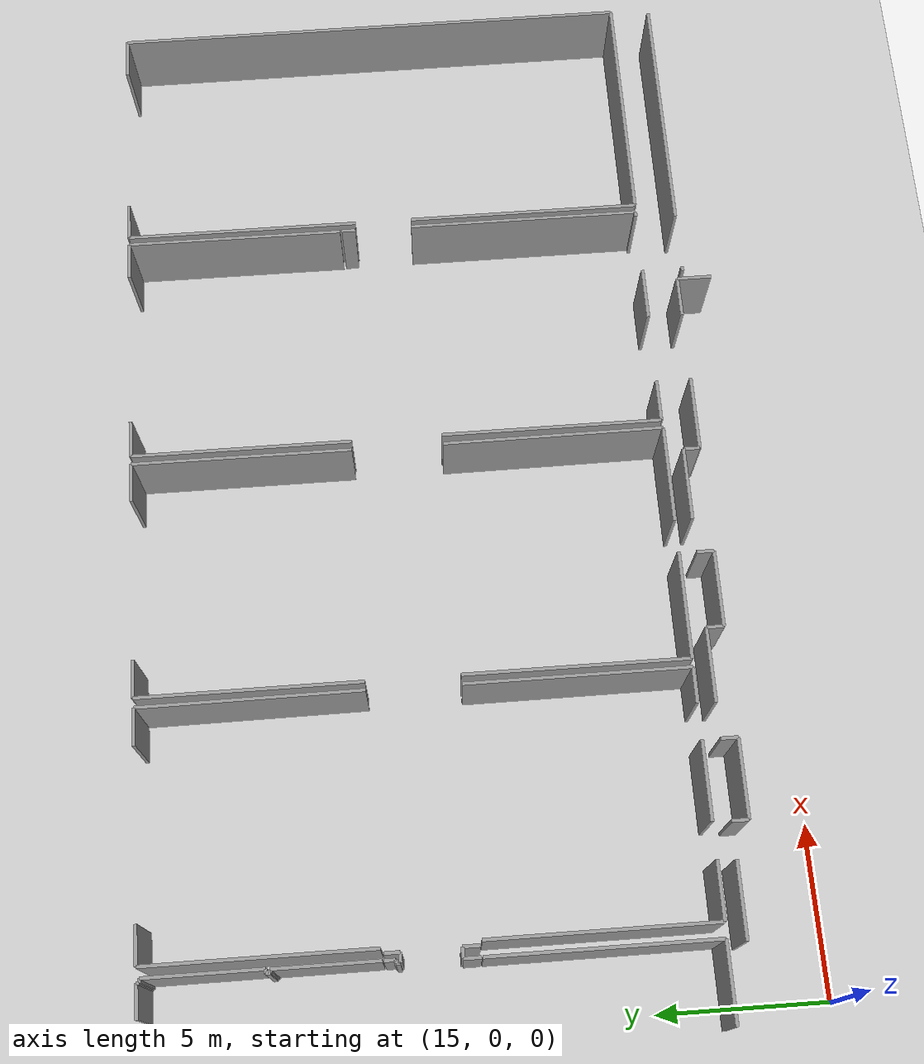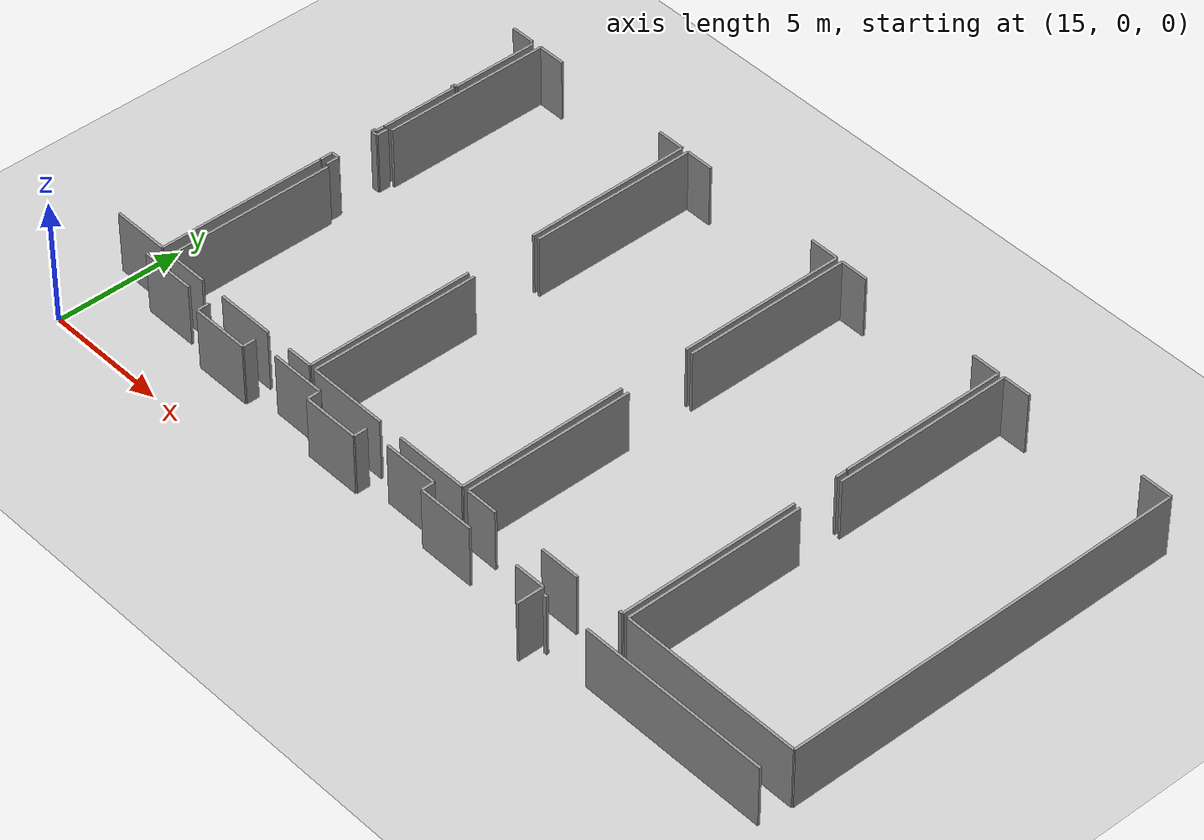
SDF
<sdf version="1.6">
 <world name="default">
  <model name="ground_plane">
   <static>1</static>
   <link name="link">
    <collision name="collision">
     <geometry><plane><normal>0 0 1</normal><size>100 100</size></plane></geometry>
     <surface><friction><ode><mu>100</mu><mu2>50</mu2></ode></friction></surface>
    </collision>
    <visual name="visual">
     <cast_shadows>0</cast_shadows>
     <geometry><plane><normal>0 0 1</normal><size>100 100</size></plane></geometry>
     <material>
      <script><uri>file://media/materials/scripts/gazebo.material</uri><name>Gazebo/Grey</name></script>
     </material>
    </visual>
   </link>
  </model>
  <model name="50045232">
   <static>1</static>
   <link name="Wall_32">
    <collision name="Wall_32_Collision">
     <geometry><box><size>0.328814097476 0.1 2.5</size></box></geometry>
     <pose>0.164407048738 0 1.25 0 0 0</pose>
    </collision>
    <visual name="Wall_32_Visual">
     <pose>0.164407048738 0 1.25 0 0 0</pose>
     <geometry><box><size>0.328814097476 0.1 2.5</size></box></geometry>
     <material>
      <script><uri>file://media/materials/scripts/gazebo.material</uri><name>Gazebo/Grey</name></script>
      <ambient>1 1 1 1</ambient>
     </material>
    </visual>
    <pose>63.6047626607 -6.76069217336 0 0 0 -1.57079632679</pose>
   </link>
   <link name="Wall_33">
    <collision name="Wall_33_Collision">
     <geometry><box><size>0.0933481505001 0.1 2.5</size></box></geometry>
     <pose>0.04667407525 0 1.25 0 0 0</pose>
    </collision>
    <visual name="Wall_33_Visual">
     <pose>0.04667407525 0 1.25 0 0 0</pose>
     <geometry><box><size>0.0933481505001 0.1 2.5</size></box></geometry>
     <material>
      <script><uri>file://media/materials/scripts/gazebo.material</uri><name>Gazebo/Grey</name></script>
      <ambient>1 1 1 1</ambient>
     </material>
    </visual>
    <pose>63.6047626607 -7.08950627084 0 0 0 3.14159265359</pose>
   </link>
   <link name="Wall_34">
    <collision name="Wall_34_Collision">
     <geometry><box><size>0.126242260676 0.1 2.5</size></box></geometry>
     <pose>0.0631211303381 0 1.25 0 0 0</pose>
    </collision>
    <visual name="Wall_34_Visual">
     <pose>0.0631211303381 0 1.25 0 0 0</pose>
     <geometry><box><size>0.126242260676 0.1 2.5</size></box></geometry>
     <material>
      <script><uri>file://media/materials/scripts/gazebo.material</uri><name>Gazebo/Grey</name></script>
      <ambient>1 1 1 1</ambient>
     </material>
    </visual>
    <pose>63.5114145102 -7.08950627084 0 0 0 -1.57079632679</pose>
   </link>
   <link name="Wall_35">
    <collision name="Wall_35_Collision">
     <geometry><box><size>0.285505635815 0.1 2.5</size></box></geometry>
     <pose>0.142752817908 0 1.25 0 0 0</pose>
    </collision>
    <visual name="Wall_35_Visual">
     <pose>0.142752817908 0 1.25 0 0 0</pose>
     <geometry><box><size>0.285505635815 0.1 2.5</size></box></geometry>
     <material>
      <script><uri>file://media/materials/scripts/gazebo.material</uri><name>Gazebo/Grey</name></script>
      <ambient>1 1 1 1</ambient>
     </material>
    </visual>
    <pose>63.5114145102 -7.21574853151 0 0 0 0.0</pose>
   </link>
   <link name="Wall_36">
    <collision name="Wall_36_Collision">
     <geometry><box><size>0.450230195269 0.1 2.5</size></box></geometry>
     <pose>0.225115097635 0 1.25 0 0 0</pose>
    </collision>
    <visual name="Wall_36_Visual">
     <pose>0.225115097635 0 1.25 0 0 0</pose>
     <geometry><box><size>0.450230195269 0.1 2.5</size></box></geometry>
     <material>
      <script><uri>file://media/materials/scripts/gazebo.material</uri><name>Gazebo/Grey</name></script>
      <ambient>1 1 1 1</ambient>
     </material>
    </visual>
    <pose>63.7969201461 -7.21574853151 0 0 0 1.57079632679</pose>
   </link>
   <link name="Wall_37">
    <collision name="Wall_37_Collision">
     <geometry><box><size>0.424321320845 0.1 2.5</size></box></geometry>
     <pose>0.212160660422 0 1.25 0 0 0</pose>
    </collision>
    <visual name="Wall_37_Visual">
     <pose>0.212160660422 0 1.25 0 0 0</pose>
     <geometry><box><size>0.424321320845 0.1 2.5</size></box></geometry>
     <material>
      <script><uri>file://media/materials/scripts/gazebo.material</uri><name>Gazebo/Grey</name></script>
      <ambient>1 1 1 1</ambient>
     </material>
    </visual>
    <pose>86.0085727893 -6.76551833624 0 0 0 -1.57079632679</pose>
   </link>
   <link name="Wall_38">
    <collision name="Wall_38_Collision">
     <geometry><box><size>7.1523733926 0.1 2.5</size></box></geometry>
     <pose>3.5761866963 0 1.25 0 0 0</pose>
    </collision>
    <visual name="Wall_38_Visual">
     <pose>3.5761866963 0 1.25 0 0 0</pose>
     <geometry><box><size>7.1523733926 0.1 2.5</size></box></geometry>
     <material>
      <script><uri>file://media/materials/scripts/gazebo.material</uri><name>Gazebo/Grey</name></script>
      <ambient>1 1 1 1</ambient>
     </material>
    </visual>
    <pose>86.0085727893 -8.96497856803 0 0 0 -1.57079632679</pose>
   </link>
   <link name="Wall_39">
    <collision name="Wall_39_Collision">
     <geometry><box><size>0.144276869344 0.1 2.5</size></box></geometry>
     <pose>0.0721384346722 0 1.25 0 0 0</pose>
    </collision>
    <visual name="Wall_39_Visual">
     <pose>0.0721384346722 0 1.25 0 0 0</pose>
     <geometry><box><size>0.144276869344 0.1 2.5</size></box></geometry>
     <material>
      <script><uri>file://media/materials/scripts/gazebo.material</uri><name>Gazebo/Grey</name></script>
      <ambient>1 1 1 1</ambient>
     </material>
    </visual>
    <pose>86.0085727893 -16.1173519606 0 0 0 3.14159265359</pose>
   </link>
   <link name="Wall_40">
    <collision name="Wall_40_Collision">
     <geometry><box><size>1.61333545007 0.1 2.5</size></box></geometry>
     <pose>0.806667725036 0 1.25 0 0 0</pose>
    </collision>
    <visual name="Wall_40_Visual">
     <pose>0.806667725036 0 1.25 0 0 0</pose>
     <geometry><box><size>1.61333545007 0.1 2.5</size></box></geometry>
     <material>
      <script><uri>file://media/materials/scripts/gazebo.material</uri><name>Gazebo/Grey</name></script>
      <ambient>1 1 1 1</ambient>
     </material>
    </visual>
    <pose>83.9283695825 -16.1173519606 0 0 0 3.14159265359</pose>
   </link>
   <link name="Wall_41">
    <collision name="Wall_41_Collision">
     <geometry><box><size>1.29214160978 0.1 2.5</size></box></geometry>
     <pose>0.64607080489 0 1.25 0 0 0</pose>
    </collision>
    <visual name="Wall_41_Visual">
     <pose>0.64607080489 0 1.25 0 0 0</pose>
     <geometry><box><size>1.29214160978 0.1 2.5</size></box></geometry>
     <material>
      <script><uri>file://media/materials/scripts/gazebo.material</uri><name>Gazebo/Grey</name></script>
      <ambient>1 1 1 1</ambient>
     </material>
    </visual>
    <pose>80.1244642007 -16.1173519606 0 0 0 3.14159265359</pose>
   </link>
   <link name="Wall_42">
    <collision name="Wall_42_Collision">
     <geometry><box><size>6.693125893 0.1 2.5</size></box></geometry>
     <pose>3.3465629465 0 1.25 0 0 0</pose>
    </collision>
    <visual name="Wall_42_Visual">
     <pose>3.3465629465 0 1.25 0 0 0</pose>
     <geometry><box><size>6.693125893 0.1 2.5</size></box></geometry>
     <material>
      <script><uri>file://media/materials/scripts/gazebo.material</uri><name>Gazebo/Grey</name></script>
      <ambient>1 1 1 1</ambient>
     </material>
    </visual>
    <pose>78.8323225909 -16.1173519606 0 0 0 1.57079632679</pose>
   </link>
   <link name="Wall_43">
    <collision name="Wall_43_Collision">
     <geometry><box><size>0.5040800127 0.1 2.5</size></box></geometry>
     <pose>0.25204000635 0 1.25 0 0 0</pose>
    </collision>
    <visual name="Wall_43_Visual">
     <pose>0.25204000635 0 1.25 0 0 0</pose>
     <geometry><box><size>0.5040800127 0.1 2.5</size></box></geometry>
     <material>
      <script><uri>file://media/materials/scripts/gazebo.material</uri><name>Gazebo/Grey</name></script>
      <ambient>1 1 1 1</ambient>
     </material>
    </visual>
    <pose>63.8158437847 -9.42422606763 0 0 0 1.57079632679</pose>
   </link>
   <link name="Wall_44">
    <collision name="Wall_44_Collision">
     <geometry><box><size>0.315097634545 0.1 2.5</size></box></geometry>
     <pose>0.157548817273 0 1.25 0 0 0</pose>
    </collision>
    <visual name="Wall_44_Visual">
     <pose>0.157548817273 0 1.25 0 0 0</pose>
     <geometry><box><size>0.315097634545 0.1 2.5</size></box></geometry>
     <material>
      <script><uri>file://media/materials/scripts/gazebo.material</uri><name>Gazebo/Grey</name></script>
      <ambient>1 1 1 1</ambient>
     </material>
    </visual>
    <pose>63.8158437847 -8.92014605493 0 0 0 3.14159265359</pose>
   </link>
   <link name="Wall_45">
    <collision name="Wall_45_Collision">
     <geometry><box><size>0.5012859184 0.1 2.5</size></box></geometry>
     <pose>0.2506429592 0 1.25 0 0 0</pose>
    </collision>
    <visual name="Wall_45_Visual">
     <pose>0.2506429592 0 1.25 0 0 0</pose>
     <geometry><box><size>0.5012859184 0.1 2.5</size></box></geometry>
     <material>
      <script><uri>file://media/materials/scripts/gazebo.material</uri><name>Gazebo/Grey</name></script>
      <ambient>1 1 1 1</ambient>
     </material>
    </visual>
    <pose>63.5007461502 -8.92014605493 0 0 0 -1.57079632679</pose>
   </link>
   <link name="Wall_50">
    <collision name="Wall_50_Collision">
     <geometry><box><size>3.05038895063 0.1 2.5</size></box></geometry>
     <pose>1.52519447531 0 1.25 0 0 0</pose>
    </collision>
    <visual name="Wall_50_Visual">
     <pose>1.52519447531 0 1.25 0 0 0</pose>
     <geometry><box><size>3.05038895063 0.1 2.5</size></box></geometry>
     <material>
      <script><uri>file://media/materials/scripts/gazebo.material</uri><name>Gazebo/Grey</name></script>
      <ambient>1 1 1 1</ambient>
     </material>
    </visual>
    <pose>63.6106048579 -6.7285600889 0 0 0 1.57079632679</pose>
   </link>
   <link name="Wall_51">
    <collision name="Wall_51_Collision">
     <geometry><box><size>0.0991903476742 0.1 2.5</size></box></geometry>
     <pose>0.0495951738371 0 1.25 0 0 0</pose>
    </collision>
    <visual name="Wall_51_Visual">
     <pose>0.0495951738371 0 1.25 0 0 0</pose>
     <geometry><box><size>0.0991903476742 0.1 2.5</size></box></geometry>
     <material>
      <script><uri>file://media/materials/scripts/gazebo.material</uri><name>Gazebo/Grey</name></script>
      <ambient>1 1 1 1</ambient>
     </material>
    </visual>
    <pose>63.6106048579 -3.67817113828 0 0 0 3.14159265359</pose>
   </link>
   <link name="Wall_52">
    <collision name="Wall_52_Collision">
     <geometry><box><size>0.126369264963 0.1 2.5</size></box></geometry>
     <pose>0.0631846324813 0 1.25 0 0 0</pose>
    </collision>
    <visual name="Wall_52_Visual">
     <pose>0.0631846324813 0 1.25 0 0 0</pose>
     <geometry><box><size>0.126369264963 0.1 2.5</size></box></geometry>
     <material>
      <script><uri>file://media/materials/scripts/gazebo.material</uri><name>Gazebo/Grey</name></script>
      <ambient>1 1 1 1</ambient>
     </material>
    </visual>
    <pose>63.5114145102 -3.67817113828 0 0 0 1.57079632679</pose>
   </link>
   <link name="Wall_53">
    <collision name="Wall_53_Collision">
     <geometry><box><size>0.113668836323 0.1 2.5</size></box></geometry>
     <pose>0.0568344181616 0 1.25 0 0 0</pose>
    </collision>
    <visual name="Wall_53_Visual">
     <pose>0.0568344181616 0 1.25 0 0 0</pose>
     <geometry><box><size>0.113668836323 0.1 2.5</size></box></geometry>
     <material>
      <script><uri>file://media/materials/scripts/gazebo.material</uri><name>Gazebo/Grey</name></script>
      <ambient>1 1 1 1</ambient>
     </material>
    </visual>
    <pose>63.5114145102 -3.55180187331 0 0 0 0.0</pose>
   </link>
   <link name="Wall_54">
    <collision name="Wall_54_Collision">
     <geometry><box><size>3.41908239403 0.1 2.5</size></box></geometry>
     <pose>1.70954119702 0 1.25 0 0 0</pose>
    </collision>
    <visual name="Wall_54_Visual">
     <pose>1.70954119702 0 1.25 0 0 0</pose>
     <geometry><box><size>3.41908239403 0.1 2.5</size></box></geometry>
     <material>
      <script><uri>file://media/materials/scripts/gazebo.material</uri><name>Gazebo/Grey</name></script>
      <ambient>1 1 1 1</ambient>
     </material>
    </visual>
    <pose>63.6250833466 -3.55180187331 0 0 0 1.57079632679</pose>
   </link>
   <link name="Wall_55">
    <collision name="Wall_55_Collision">
     <geometry><box><size>0.119130020638 0.1 2.5</size></box></geometry>
     <pose>0.0595650103191 0 1.25 0 0 0</pose>
    </collision>
    <visual name="Wall_55_Visual">
     <pose>0.0595650103191 0 1.25 0 0 0</pose>
     <geometry><box><size>0.119130020638 0.1 2.5</size></box></geometry>
     <material>
      <script><uri>file://media/materials/scripts/gazebo.material</uri><name>Gazebo/Grey</name></script>
      <ambient>1 1 1 1</ambient>
     </material>
    </visual>
    <pose>63.6250833466 -0.132719479282 0 0 0 3.14159265359</pose>
   </link>
   <link name="Wall_56">
    <collision name="Wall_56_Collision">
     <geometry><box><size>0.0822987775837 0.1 2.5</size></box></geometry>
     <pose>0.0411493887919 0 1.25 0 0 0</pose>
    </collision>
    <visual name="Wall_56_Visual">
     <pose>0.0411493887919 0 1.25 0 0 0</pose>
     <geometry><box><size>0.0822987775837 0.1 2.5</size></box></geometry>
     <material>
      <script><uri>file://media/materials/scripts/gazebo.material</uri><name>Gazebo/Grey</name></script>
      <ambient>1 1 1 1</ambient>
     </material>
    </visual>
    <pose>63.5059533259 -0.132719479282 0 0 0 1.57079632679</pose>
   </link>
   <link name="Wall_57">
    <collision name="Wall_57_Collision">
     <geometry><box><size>0.955453246547 0.1 2.5</size></box></geometry>
     <pose>0.477726623274 0 1.25 0 0 0</pose>
    </collision>
    <visual name="Wall_57_Visual">
     <pose>0.477726623274 0 1.25 0 0 0</pose>
     <geometry><box><size>0.955453246547 0.1 2.5</size></box></geometry>
     <material>
      <script><uri>file://media/materials/scripts/gazebo.material</uri><name>Gazebo/Grey</name></script>
      <ambient>1 1 1 1</ambient>
     </material>
    </visual>
    <pose>63.5059533259 -0.0504207016987 0 0 0 3.14159265359</pose>
   </link>
   <link name="Wall_60">
    <collision name="Wall_60_Collision">
     <geometry><box><size>6.64778536276 0.1 2.5</size></box></geometry>
     <pose>3.32389268138 0 1.25 0 0 0</pose>
    </collision>
    <visual name="Wall_60_Visual">
     <pose>3.32389268138 0 1.25 0 0 0</pose>
     <geometry><box><size>6.64778536276 0.1 2.5</size></box></geometry>
     <material>
      <script><uri>file://media/materials/scripts/gazebo.material</uri><name>Gazebo/Grey</name></script>
      <ambient>1 1 1 1</ambient>
     </material>
    </visual>
    <pose>63.9342117796 -6.68880774726 0 0 0 1.57079632679</pose>
   </link>
   <link name="Wall_61">
    <collision name="Wall_61_Collision">
     <geometry><box><size>1.13059215749 0.1 2.5</size></box></geometry>
     <pose>0.565296078743 0 1.25 0 0 0</pose>
    </collision>
    <visual name="Wall_61_Visual">
     <pose>0.565296078743 0 1.25 0 0 0</pose>
     <geometry><box><size>1.13059215749 0.1 2.5</size></box></geometry>
     <material>
      <script><uri>file://media/materials/scripts/gazebo.material</uri><name>Gazebo/Grey</name></script>
      <ambient>1 1 1 1</ambient>
     </material>
    </visual>
    <pose>63.9342117796 -0.0410223845055 0 0 0 0.0</pose>
   </link>
   <link name="Wall_62">
    <collision name="Wall_62_Collision">
     <geometry><box><size>1.11128750595 0.1 2.5</size></box></geometry>
     <pose>0.555643752977 0 1.25 0 0 0</pose>
    </collision>
    <visual name="Wall_62_Visual">
     <pose>0.555643752977 0 1.25 0 0 0</pose>
     <geometry><box><size>1.11128750595 0.1 2.5</size></box></geometry>
     <material>
      <script><uri>file://media/materials/scripts/gazebo.material</uri><name>Gazebo/Grey</name></script>
      <ambient>1 1 1 1</ambient>
     </material>
    </visual>
    <pose>69.9836799492 -0.0410223845055 0 0 0 0.0</pose>
   </link>
   <link name="Wall_63">
    <collision name="Wall_63_Collision">
     <geometry><box><size>6.64787644378 0.1 2.5</size></box></geometry>
     <pose>3.32393822189 0 1.25 0 0 0</pose>
    </collision>
    <visual name="Wall_63_Visual">
     <pose>3.32393822189 0 1.25 0 0 0</pose>
     <geometry><box><size>6.64787644378 0.1 2.5</size></box></geometry>
     <material>
      <script><uri>file://media/materials/scripts/gazebo.material</uri><name>Gazebo/Grey</name></script>
      <ambient>1 1 1 1</ambient>
     </material>
    </visual>
    <pose>71.0949674552 -0.0410223845055 0 0 0 -1.56556167274</pose>
   </link>
   <link name="Wall_64">
    <collision name="Wall_64_Collision">
     <geometry><box><size>6.65515161137 0.1 2.5</size></box></geometry>
     <pose>3.32757580568 0 1.25 0 0 0</pose>
    </collision>
    <visual name="Wall_64_Visual">
     <pose>3.32757580568 0 1.25 0 0 0</pose>
     <geometry><box><size>6.65515161137 0.1 2.5</size></box></geometry>
     <material>
      <script><uri>file://media/materials/scripts/gazebo.material</uri><name>Gazebo/Grey</name></script>
      <ambient>1 1 1 1</ambient>
     </material>
    </visual>
    <pose>71.3766629624 -6.68512462296 0 0 0 1.57079632679</pose>
   </link>
   <link name="Wall_65">
    <collision name="Wall_65_Collision">
     <geometry><box><size>1.12551198603 0.1 2.5</size></box></geometry>
     <pose>0.562755993015 0 1.25 0 0 0</pose>
    </collision>
    <visual name="Wall_65_Visual">
     <pose>0.562755993015 0 1.25 0 0 0</pose>
     <geometry><box><size>1.12551198603 0.1 2.5</size></box></geometry>
     <material>
      <script><uri>file://media/materials/scripts/gazebo.material</uri><name>Gazebo/Grey</name></script>
      <ambient>1 1 1 1</ambient>
     </material>
    </visual>
    <pose>71.3766629624 -0.0299730115891 0 0 0 0.0</pose>
   </link>
   <link name="Wall_66">
    <collision name="Wall_66_Collision">
     <geometry><box><size>1.17745673916 0.1 2.5</size></box></geometry>
     <pose>0.588728369582 0 1.25 0 0 0</pose>
    </collision>
    <visual name="Wall_66_Visual">
     <pose>0.588728369582 0 1.25 0 0 0</pose>
     <geometry><box><size>1.17745673916 0.1 2.5</size></box></geometry>
     <material>
      <script><uri>file://media/materials/scripts/gazebo.material</uri><name>Gazebo/Grey</name></script>
      <ambient>1 1 1 1</ambient>
     </material>
    </visual>
    <pose>77.3851087474 -0.0299730115891 0 0 0 0.0</pose>
   </link>
   <link name="Wall_67">
    <collision name="Wall_67_Collision">
     <geometry><box><size>6.65515689018 0.1 2.5</size></box></geometry>
     <pose>3.32757844509 0 1.25 0 0 0</pose>
    </collision>
    <visual name="Wall_67_Visual">
     <pose>3.32757844509 0 1.25 0 0 0</pose>
     <geometry><box><size>6.65515689018 0.1 2.5</size></box></geometry>
     <material>
      <script><uri>file://media/materials/scripts/gazebo.material</uri><name>Gazebo/Grey</name></script>
      <ambient>1 1 1 1</ambient>
     </material>
    </visual>
    <pose>78.5625654866 -0.0299730115891 0 0 0 -1.57205584408</pose>
   </link>
   <link name="Wall_68">
    <collision name="Wall_68_Collision">
     <geometry><box><size>6.67369423718 0.1 2.5</size></box></geometry>
     <pose>3.33684711859 0 1.25 0 0 0</pose>
    </collision>
    <visual name="Wall_68_Visual">
     <pose>3.33684711859 0 1.25 0 0 0</pose>
     <geometry><box><size>6.67369423718 0.1 2.5</size></box></geometry>
     <material>
      <script><uri>file://media/materials/scripts/gazebo.material</uri><name>Gazebo/Grey</name></script>
      <ambient>1 1 1 1</ambient>
     </material>
    </visual>
    <pose>78.8174630894 -6.70328623591 0 0 0 1.57079632679</pose>
   </link>
   <link name="Wall_69">
    <collision name="Wall_69_Collision">
     <geometry><box><size>1.1313541832 0.1 2.5</size></box></geometry>
     <pose>0.565677091602 0 1.25 0 0 0</pose>
    </collision>
    <visual name="Wall_69_Visual">
     <pose>0.565677091602 0 1.25 0 0 0</pose>
     <geometry><box><size>1.1313541832 0.1 2.5</size></box></geometry>
     <material>
      <script><uri>file://media/materials/scripts/gazebo.material</uri><name>Gazebo/Grey</name></script>
      <ambient>1 1 1 1</ambient>
     </material>
    </visual>
    <pose>78.8174630894 -0.02959199873 0 0 0 0.0</pose>
   </link>
   <link name="Wall_70">
    <collision name="Wall_70_Collision">
     <geometry><box><size>1.14291157327 0.1 2.5</size></box></geometry>
     <pose>0.571455786633 0 1.25 0 0 0</pose>
    </collision>
    <visual name="Wall_70_Visual">
     <pose>0.571455786633 0 1.25 0 0 0</pose>
     <geometry><box><size>1.14291157327 0.1 2.5</size></box></geometry>
     <material>
      <script><uri>file://media/materials/scripts/gazebo.material</uri><name>Gazebo/Grey</name></script>
      <ambient>1 1 1 1</ambient>
     </material>
    </visual>
    <pose>84.8665502461 -0.02959199873 0 0 0 0.0</pose>
   </link>
   <link name="Wall_71">
    <collision name="Wall_71_Collision">
     <geometry><box><size>6.67371222421 0.1 2.5</size></box></geometry>
     <pose>3.33685611211 0 1.25 0 0 0</pose>
    </collision>
    <visual name="Wall_71_Visual">
     <pose>3.33685611211 0 1.25 0 0 0</pose>
     <geometry><box><size>6.67371222421 0.1 2.5</size></box></geometry>
     <material>
      <script><uri>file://media/materials/scripts/gazebo.material</uri><name>Gazebo/Grey</name></script>
      <ambient>1 1 1 1</ambient>
     </material>
    </visual>
    <pose>86.0094618193 -0.02959199873 0 0 0 -1.57311805364</pose>
   </link>
   <link name="Wall_72">
    <collision name="Wall_72_Collision">
     <geometry><box><size>7.32205111923 0.1 2.5</size></box></geometry>
     <pose>3.66102555961 0 1.25 0 0 0</pose>
    </collision>
    <visual name="Wall_72_Visual">
     <pose>3.66102555961 0 1.25 0 0 0</pose>
     <geometry><box><size>7.32205111923 0.1 2.5</size></box></geometry>
     <material>
      <script><uri>file://media/materials/scripts/gazebo.material</uri><name>Gazebo/Grey</name></script>
      <ambient>1 1 1 1</ambient>
     </material>
    </visual>
    <pose>93.5758691856 -16.1311954278 0 0 0 3.14159265359</pose>
   </link>
   <link name="Wall_73">
    <collision name="Wall_73_Collision">
     <geometry><box><size>7.1579615812 0.1 2.5</size></box></geometry>
     <pose>3.5789807906 0 1.25 0 0 0</pose>
    </collision>
    <visual name="Wall_73_Visual">
     <pose>3.5789807906 0 1.25 0 0 0</pose>
     <geometry><box><size>7.1579615812 0.1 2.5</size></box></geometry>
     <material>
      <script><uri>file://media/materials/scripts/gazebo.material</uri><name>Gazebo/Grey</name></script>
      <ambient>1 1 1 1</ambient>
     </material>
    </visual>
    <pose>86.2538180664 -16.1311954278 0 0 0 1.57079632679</pose>
   </link>
   <link name="Wall_74">
    <collision name="Wall_74_Collision">
     <geometry><box><size>7.17777424988 0.1 2.5</size></box></geometry>
     <pose>3.58888712494 0 1.25 0 0 0</pose>
    </collision>
    <visual name="Wall_74_Visual">
     <pose>3.58888712494 0 1.25 0 0 0</pose>
     <geometry><box><size>7.17777424988 0.1 2.5</size></box></geometry>
     <material>
      <script><uri>file://media/materials/scripts/gazebo.material</uri><name>Gazebo/Grey</name></script>
      <ambient>1 1 1 1</ambient>
     </material>
    </visual>
    <pose>86.2538180664 -7.21168439435 0 0 0 1.57079632679</pose>
   </link>
   <link name="Wall_75">
    <collision name="Wall_75_Collision">
     <geometry><box><size>1.13681536752 0.1 2.5</size></box></geometry>
     <pose>0.568407683759 0 1.25 0 0 0</pose>
    </collision>
    <visual name="Wall_75_Visual">
     <pose>0.568407683759 0 1.25 0 0 0</pose>
     <geometry><box><size>1.13681536752 0.1 2.5</size></box></geometry>
     <material>
      <script><uri>file://media/materials/scripts/gazebo.material</uri><name>Gazebo/Grey</name></script>
      <ambient>1 1 1 1</ambient>
     </material>
    </visual>
    <pose>86.2538180664 -0.0339101444674 0 0 0 0.0</pose>
   </link>
   <link name="Wall_76">
    <collision name="Wall_76_Collision">
     <geometry><box><size>1.25188125099 0.1 2.5</size></box></geometry>
     <pose>0.625940625496 0 1.25 0 0 0</pose>
    </collision>
    <visual name="Wall_76_Visual">
     <pose>0.625940625496 0 1.25 0 0 0</pose>
     <geometry><box><size>1.25188125099 0.1 2.5</size></box></geometry>
     <material>
      <script><uri>file://media/materials/scripts/gazebo.material</uri><name>Gazebo/Grey</name></script>
      <ambient>1 1 1 1</ambient>
     </material>
    </visual>
    <pose>92.2994761073 -0.0339101444674 0 0 0 0.0</pose>
   </link>
   <link name="Wall_77">
    <collision name="Wall_77_Collision">
     <geometry><box><size>16.0973039458 0.1 2.5</size></box></geometry>
     <pose>8.04865197291 0 1.25 0 0 0</pose>
    </collision>
    <visual name="Wall_77_Visual">
     <pose>8.04865197291 0 1.25 0 0 0</pose>
     <geometry><box><size>16.0973039458 0.1 2.5</size></box></geometry>
     <material>
      <script><uri>file://media/materials/scripts/gazebo.material</uri><name>Gazebo/Grey</name></script>
      <ambient>1 1 1 1</ambient>
     </material>
    </visual>
    <pose>93.5513573583 -0.0339101444674 0 0 0 -1.56927359747</pose>
   </link>
   <link name="Wall_78">
    <collision name="Wall_78_Collision">
     <geometry><box><size>2.97710747738 0.1 2.5</size></box></geometry>
     <pose>1.48855373869 0 1.25 0 0 0</pose>
    </collision>
    <visual name="Wall_78_Visual">
     <pose>1.48855373869 0 1.25 0 0 0</pose>
     <geometry><box><size>2.97710747738 0.1 2.5</size></box></geometry>
     <material>
      <script><uri>file://media/materials/scripts/gazebo.material</uri><name>Gazebo/Grey</name></script>
      <ambient>1 1 1 1</ambient>
     </material>
    </visual>
    <pose>78.5793300524 -16.1432608351 0 0 0 3.14159265359</pose>
   </link>
   <link name="Wall_79">
    <collision name="Wall_79_Collision">
     <geometry><box><size>3.2364502302 0.1 2.5</size></box></geometry>
     <pose>1.6182251151 0 1.25 0 0 0</pose>
    </collision>
    <visual name="Wall_79_Visual">
     <pose>1.6182251151 0 1.25 0 0 0</pose>
     <geometry><box><size>3.2364502302 0.1 2.5</size></box></geometry>
     <material>
      <script><uri>file://media/materials/scripts/gazebo.material</uri><name>Gazebo/Grey</name></script>
      <ambient>1 1 1 1</ambient>
     </material>
    </visual>
    <pose>74.6131131926 -16.1432608351 0 0 0 3.14159265359</pose>
   </link>
   <link name="Wall_80">
    <collision name="Wall_80_Collision">
     <geometry><box><size>6.69274488014 0.1 2.5</size></box></geometry>
     <pose>3.34637244007 0 1.25 0 0 0</pose>
    </collision>
    <visual name="Wall_80_Visual">
     <pose>3.34637244007 0 1.25 0 0 0</pose>
     <geometry><box><size>6.69274488014 0.1 2.5</size></box></geometry>
     <material>
      <script><uri>file://media/materials/scripts/gazebo.material</uri><name>Gazebo/Grey</name></script>
      <ambient>1 1 1 1</ambient>
     </material>
    </visual>
    <pose>71.3766629624 -16.1432608351 0 0 0 1.57079632679</pose>
   </link>
   <link name="Wall_81">
    <collision name="Wall_81_Collision">
     <geometry><box><size>6.69282823123 0.1 2.5</size></box></geometry>
     <pose>3.34641411561 0 1.25 0 0 0</pose>
    </collision>
    <visual name="Wall_81_Visual">
     <pose>3.34641411561 0 1.25 0 0 0</pose>
     <geometry><box><size>6.69282823123 0.1 2.5</size></box></geometry>
     <material>
      <script><uri>file://media/materials/scripts/gazebo.material</uri><name>Gazebo/Grey</name></script>
      <ambient>1 1 1 1</ambient>
     </material>
    </visual>
    <pose>78.5459279251 -9.45051595491 0 0 0 -1.56580557179</pose>
   </link>
   <link name="Wall_82">
    <collision name="Wall_82_Collision">
     <geometry><box><size>1.06734402286 0.1 2.5</size></box></geometry>
     <pose>0.53367201143 0 1.25 0 0 0</pose>
    </collision>
    <visual name="Wall_82_Visual">
     <pose>0.53367201143 0 1.25 0 0 0</pose>
     <geometry><box><size>1.06734402286 0.1 2.5</size></box></geometry>
     <material>
      <script><uri>file://media/materials/scripts/gazebo.material</uri><name>Gazebo/Grey</name></script>
      <ambient>1 1 1 1</ambient>
     </material>
    </visual>
    <pose>71.122400381 -16.1360215907 0 0 0 3.14159265359</pose>
   </link>
   <link name="Wall_83">
    <collision name="Wall_83_Collision">
     <geometry><box><size>2.3309096682 0.1 2.5</size></box></geometry>
     <pose>1.1654548341 0 1.25 0 0 0</pose>
    </collision>
    <visual name="Wall_83_Visual">
     <pose>1.1654548341 0 1.25 0 0 0</pose>
     <geometry><box><size>2.3309096682 0.1 2.5</size></box></geometry>
     <material>
      <script><uri>file://media/materials/scripts/gazebo.material</uri><name>Gazebo/Grey</name></script>
      <ambient>1 1 1 1</ambient>
     </material>
    </visual>
    <pose>69.009303064 -16.1360215907 0 0 0 3.14159265359</pose>
   </link>
   <link name="Wall_84">
    <collision name="Wall_84_Collision">
     <geometry><box><size>1.69195110335 0.1 2.5</size></box></geometry>
     <pose>0.845975551675 0 1.25 0 0 0</pose>
    </collision>
    <visual name="Wall_84_Visual">
     <pose>0.845975551675 0 1.25 0 0 0</pose>
     <geometry><box><size>1.69195110335 0.1 2.5</size></box></geometry>
     <material>
      <script><uri>file://media/materials/scripts/gazebo.material</uri><name>Gazebo/Grey</name></script>
      <ambient>1 1 1 1</ambient>
     </material>
    </visual>
    <pose>65.6472455945 -16.1360215907 0 0 0 3.14159265359</pose>
   </link>
   <link name="Wall_85">
    <collision name="Wall_85_Collision">
     <geometry><box><size>6.66353389427 0.1 2.5</size></box></geometry>
     <pose>3.33176694713 0 1.25 0 0 0</pose>
    </collision>
    <visual name="Wall_85_Visual">
     <pose>3.33176694713 0 1.25 0 0 0</pose>
     <geometry><box><size>6.66353389427 0.1 2.5</size></box></geometry>
     <material>
      <script><uri>file://media/materials/scripts/gazebo.material</uri><name>Gazebo/Grey</name></script>
      <ambient>1 1 1 1</ambient>
     </material>
    </visual>
    <pose>63.9552944912 -16.1360215907 0 0 0 1.57079632679</pose>
   </link>
   <link name="Wall_86">
    <collision name="Wall_86_Collision">
     <geometry><box><size>6.66355018039 0.1 2.5</size></box></geometry>
     <pose>3.33177509019 0 1.25 0 0 0</pose>
    </collision>
    <visual name="Wall_86_Visual">
     <pose>3.33177509019 0 1.25 0 0 0</pose>
     <geometry><box><size>6.66355018039 0.1 2.5</size></box></geometry>
     <material>
      <script><uri>file://media/materials/scripts/gazebo.material</uri><name>Gazebo/Grey</name></script>
      <ambient>1 1 1 1</ambient>
     </material>
    </visual>
    <pose>71.1076678838 -9.47248769646 0 0 0 -1.56858541687</pose>
   </link>
   <link name="Wall_88">
    <collision name="Wall_88_Collision">
     <geometry><box><size>6.65375456422 0.1 2.5</size></box></geometry>
     <pose>3.32687728211 0 1.25 0 0 0</pose>
    </collision>
    <visual name="Wall_88_Visual">
     <pose>3.32687728211 0 1.25 0 0 0</pose>
     <geometry><box><size>6.65375456422 0.1 2.5</size></box></geometry>
     <material>
      <script><uri>file://media/materials/scripts/gazebo.material</uri><name>Gazebo/Grey</name></script>
      <ambient>1 1 1 1</ambient>
     </material>
    </visual>
    <pose>63.502016193 -9.46156532783 0 0 0 -1.57079632679</pose>
   </link>
   <link name="Wall_89">
    <collision name="Wall_89_Collision">
     <geometry><box><size>2.30271471662 0.1 2.5</size></box></geometry>
     <pose>1.15135735831 0 1.25 0 0 0</pose>
    </collision>
    <visual name="Wall_89_Visual">
     <pose>1.15135735831 0 1.25 0 0 0</pose>
     <geometry><box><size>2.30271471662 0.1 2.5</size></box></geometry>
     <material>
      <script><uri>file://media/materials/scripts/gazebo.material</uri><name>Gazebo/Grey</name></script>
      <ambient>1 1 1 1</ambient>
     </material>
    </visual>
    <pose>63.502016193 -16.115319892 0 0 0 3.14159265359</pose>
   </link>
   <link name="Wall_333">
    <collision name="Wall_333_Collision">
     <geometry><box><size>0.142498809335 0.1 2.5</size></box></geometry>
     <pose>0.0712494046674 0 1.25 0 0 0</pose>
    </collision>
    <visual name="Wall_333_Visual">
     <pose>0.0712494046674 0 1.25 0 0 0</pose>
     <geometry><box><size>0.142498809335 0.1 2.5</size></box></geometry>
     <material>
      <script><uri>file://media/materials/scripts/gazebo.material</uri><name>Gazebo/Grey</name></script>
      <ambient>1 1 1 1</ambient>
     </material>
    </visual>
    <pose>83.8242260676 -17.3724083188 0 0 0 0.0</pose>
   </link>
   <link name="Wall_334">
    <collision name="Wall_334_Collision">
     <geometry><box><size>7.67207493253 0.1 2.5</size></box></geometry>
     <pose>3.83603746626 0 1.25 0 0 0</pose>
    </collision>
    <visual name="Wall_334_Visual">
     <pose>3.83603746626 0 1.25 0 0 0</pose>
     <geometry><box><size>7.67207493253 0.1 2.5</size></box></geometry>
     <material>
      <script><uri>file://media/materials/scripts/gazebo.material</uri><name>Gazebo/Grey</name></script>
      <ambient>1 1 1 1</ambient>
     </material>
    </visual>
    <pose>85.7713287823 -17.3724083188 0 0 0 0.0</pose>
   </link>
   <link name="Wall_370">
    <collision name="Wall_370_Collision">
     <geometry><box><size>2.21724083188 0.1 2.5</size></box></geometry>
     <pose>1.10862041594 0 1.25 0 0 0</pose>
    </collision>
    <visual name="Wall_370_Visual">
     <pose>1.10862041594 0 1.25 0 0 0</pose>
     <geometry><box><size>2.21724083188 0.1 2.5</size></box></geometry>
     <material>
      <script><uri>file://media/materials/scripts/gazebo.material</uri><name>Gazebo/Grey</name></script>
      <ambient>1 1 1 1</ambient>
     </material>
    </visual>
    <pose>63.3889823782 -16.6806159708 0 0 0 0.0</pose>
   </link>
   <link name="Wall_371">
    <collision name="Wall_371_Collision">
     <geometry><box><size>0.489855532624 0.1 2.5</size></box></geometry>
     <pose>0.244927766312 0 1.25 0 0 0</pose>
    </collision>
    <visual name="Wall_371_Visual">
     <pose>0.244927766312 0 1.25 0 0 0</pose>
     <geometry><box><size>0.489855532624 0.1 2.5</size></box></geometry>
     <material>
      <script><uri>file://media/materials/scripts/gazebo.material</uri><name>Gazebo/Grey</name></script>
      <ambient>1 1 1 1</ambient>
     </material>
    </visual>
    <pose>66.6615018257 -16.6806159708 0 0 0 -1.57079632679</pose>
   </link>
   <link name="Wall_372">
    <collision name="Wall_372_Collision">
     <geometry><box><size>2.32989363391 0.1 2.5</size></box></geometry>
     <pose>1.16494681696 0 1.25 0 0 0</pose>
    </collision>
    <visual name="Wall_372_Visual">
     <pose>1.16494681696 0 1.25 0 0 0</pose>
     <geometry><box><size>2.32989363391 0.1 2.5</size></box></geometry>
     <material>
      <script><uri>file://media/materials/scripts/gazebo.material</uri><name>Gazebo/Grey</name></script>
      <ambient>1 1 1 1</ambient>
     </material>
    </visual>
    <pose>66.6615018257 -17.1704715034 0 0 0 0.0</pose>
   </link>
   <link name="Wall_373">
    <collision name="Wall_373_Collision">
     <geometry><box><size>0.5012859184 0.1 2.5</size></box></geometry>
     <pose>0.2506429592 0 1.25 0 0 0</pose>
    </collision>
    <visual name="Wall_373_Visual">
     <pose>0.2506429592 0 1.25 0 0 0</pose>
     <geometry><box><size>0.5012859184 0.1 2.5</size></box></geometry>
     <material>
      <script><uri>file://media/materials/scripts/gazebo.material</uri><name>Gazebo/Grey</name></script>
      <ambient>1 1 1 1</ambient>
     </material>
    </visual>
    <pose>68.9913954596 -17.1704715034 0 0 0 1.57079632679</pose>
   </link>
   <link name="Wall_374">
    <collision name="Wall_374_Collision">
     <geometry><box><size>2.22130496904 0.1 2.5</size></box></geometry>
     <pose>1.11065248452 0 1.25 0 0 0</pose>
    </collision>
    <visual name="Wall_374_Visual">
     <pose>1.11065248452 0 1.25 0 0 0</pose>
     <geometry><box><size>2.22130496904 0.1 2.5</size></box></geometry>
     <material>
      <script><uri>file://media/materials/scripts/gazebo.material</uri><name>Gazebo/Grey</name></script>
      <ambient>1 1 1 1</ambient>
     </material>
    </visual>
    <pose>70.0418479124 -16.669185585 0 0 0 0.0</pose>
   </link>
   <link name="Wall_375">
    <collision name="Wall_375_Collision">
     <geometry><box><size>0.51538339419 0.1 2.5</size></box></geometry>
     <pose>0.257691697095 0 1.25 0 0 0</pose>
    </collision>
    <visual name="Wall_375_Visual">
     <pose>0.257691697095 0 1.25 0 0 0</pose>
     <geometry><box><size>0.51538339419 0.1 2.5</size></box></geometry>
     <material>
      <script><uri>file://media/materials/scripts/gazebo.material</uri><name>Gazebo/Grey</name></script>
      <ambient>1 1 1 1</ambient>
     </material>
    </visual>
    <pose>72.2631528814 -16.669185585 0 0 0 -1.57079632679</pose>
   </link>
   <link name="Wall_376">
    <collision name="Wall_376_Collision">
     <geometry><box><size>2.3047467852 0.1 2.5</size></box></geometry>
     <pose>1.1523733926 0 1.25 0 0 0</pose>
    </collision>
    <visual name="Wall_376_Visual">
     <pose>1.1523733926 0 1.25 0 0 0</pose>
     <geometry><box><size>2.3047467852 0.1 2.5</size></box></geometry>
     <material>
      <script><uri>file://media/materials/scripts/gazebo.material</uri><name>Gazebo/Grey</name></script>
      <ambient>1 1 1 1</ambient>
     </material>
    </visual>
    <pose>72.2631528814 -17.1845689792 0 0 0 0.0</pose>
   </link>
   <link name="Wall_377">
    <collision name="Wall_377_Collision">
     <geometry><box><size>0.511446261311 0.1 2.5</size></box></geometry>
     <pose>0.255723130656 0 1.25 0 0 0</pose>
    </collision>
    <visual name="Wall_377_Visual">
     <pose>0.255723130656 0 1.25 0 0 0</pose>
     <geometry><box><size>0.511446261311 0.1 2.5</size></box></geometry>
     <material>
      <script><uri>file://media/materials/scripts/gazebo.material</uri><name>Gazebo/Grey</name></script>
      <ambient>1 1 1 1</ambient>
     </material>
    </visual>
    <pose>74.5678996666 -17.1845689792 0 0 0 1.57079632679</pose>
   </link>
   <link name="Wall_378">
    <collision name="Wall_378_Collision">
     <geometry><box><size>2.23997459914 0.1 2.5</size></box></geometry>
     <pose>1.11998729957 0 1.25 0 0 0</pose>
    </collision>
    <visual name="Wall_378_Visual">
     <pose>1.11998729957 0 1.25 0 0 0</pose>
     <geometry><box><size>2.23997459914 0.1 2.5</size></box></geometry>
     <material>
      <script><uri>file://media/materials/scripts/gazebo.material</uri><name>Gazebo/Grey</name></script>
      <ambient>1 1 1 1</ambient>
     </material>
    </visual>
    <pose>75.6034926179 -16.6731227179 0 0 0 0.0</pose>
   </link>
   <link name="Wall_379">
    <collision name="Wall_379_Collision">
     <geometry><box><size>0.497348785522 0.1 2.5</size></box></geometry>
     <pose>0.248674392761 0 1.25 0 0 0</pose>
    </collision>
    <visual name="Wall_379_Visual">
     <pose>0.248674392761 0 1.25 0 0 0</pose>
     <geometry><box><size>0.497348785522 0.1 2.5</size></box></geometry>
     <material>
      <script><uri>file://media/materials/scripts/gazebo.material</uri><name>Gazebo/Grey</name></script>
      <ambient>1 1 1 1</ambient>
     </material>
    </visual>
    <pose>77.843467217 -16.6731227179 0 0 0 -1.57079632679</pose>
   </link>
   <link name="Wall_380">
    <collision name="Wall_380_Collision">
     <geometry><box><size>2.29661851087 0.1 2.5</size></box></geometry>
     <pose>1.14830925544 0 1.25 0 0 0</pose>
    </collision>
    <visual name="Wall_380_Visual">
     <pose>1.14830925544 0 1.25 0 0 0</pose>
     <geometry><box><size>2.29661851087 0.1 2.5</size></box></geometry>
     <material>
      <script><uri>file://media/materials/scripts/gazebo.material</uri><name>Gazebo/Grey</name></script>
      <ambient>1 1 1 1</ambient>
     </material>
    </visual>
    <pose>77.843467217 -17.1704715034 0 0 0 0.0</pose>
   </link>
   <link name="Wall_381">
    <collision name="Wall_381_Collision">
     <geometry><box><size>1.26102555961 0.1 2.5</size></box></geometry>
     <pose>0.630512779806 0 1.25 0 0 0</pose>
    </collision>
    <visual name="Wall_381_Visual">
     <pose>0.630512779806 0 1.25 0 0 0</pose>
     <geometry><box><size>1.26102555961 0.1 2.5</size></box></geometry>
     <material>
      <script><uri>file://media/materials/scripts/gazebo.material</uri><name>Gazebo/Grey</name></script>
      <ambient>1 1 1 1</ambient>
     </material>
    </visual>
    <pose>82.295348468 -17.1704715034 0 0 0 0.0</pose>
   </link>
   <link name="Wall_382">
    <collision name="Wall_382_Collision">
     <geometry><box><size>1.06378790284 0.1 2.5</size></box></geometry>
     <pose>0.531893951421 0 1.25 0 0 0</pose>
    </collision>
    <visual name="Wall_382_Visual">
     <pose>0.531893951421 0 1.25 0 0 0</pose>
     <geometry><box><size>1.06378790284 0.1 2.5</size></box></geometry>
     <material>
      <script><uri>file://media/materials/scripts/gazebo.material</uri><name>Gazebo/Grey</name></script>
      <ambient>1 1 1 1</ambient>
     </material>
    </visual>
    <pose>83.5563740276 -17.1704715034 0 0 0 -1.57079632679</pose>
   </link>
   <pose>-46.75 19.2201063661 0 0 0 0</pose>
  </model>
 </world>
</sdf>
